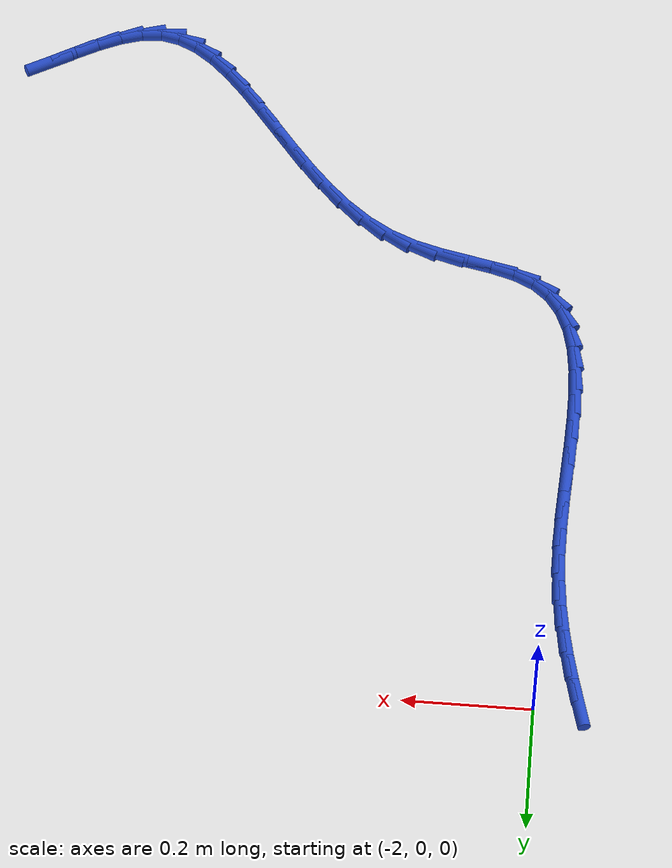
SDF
<sdf version="1.6">
 <world name="default">
  <model name="ground_plane">
   <static>1</static>
   <link name="link">
    <collision name="collision">
     <geometry><plane><normal>0 0 1</normal><size>100 100</size></plane></geometry>
     <surface><friction><ode><mu>100</mu><mu2>50</mu2></ode></friction></surface>
    </collision>
    <visual name="visual">
     <cast_shadows>0</cast_shadows>
     <geometry><plane><normal>0 0 1</normal><size>100 100</size></plane></geometry>
     <material>
      <script><uri>file://media/materials/scripts/gazebo.material</uri><name>Gazebo/WhiteGlow</name></script>
     </material>
    </visual>
   </link>
  </model>
  <model name="line">
   <link name="link_85">
    <pose>-2.067319432149856 -0.009426794801554797 0.01 0 1.57 -1.3057953818355004</pose>
    <collision name="collision">
     <geometry><cylinder><radius>0.01</radius><length>0.08</length></cylinder></geometry>
    </collision>
    <visual name="visual">
     <material>
      <script><name>Gazebo/Blue</name><uri>file://media/materials/scripts/gazebo.material</uri></script>
     </material>
     <geometry><cylinder><radius>0.01</radius><length>0.08</length></cylinder></geometry>
    </visual>
   </link>
   <link name="link_86">
    <pose>-2.0564137687409603 -0.04961221741111521 0.01 0 1.57 -1.3334563957776255</pose>
    <collision name="collision">
     <geometry><cylinder><radius>0.01</radius><length>0.08</length></cylinder></geometry>
    </collision>
    <visual name="visual">
     <material>
      <script><name>Gazebo/Blue</name><uri>file://media/materials/scripts/gazebo.material</uri></script>
     </material>
     <geometry><cylinder><radius>0.01</radius><length>0.08</length></cylinder></geometry>
    </visual>
   </link>
   <link name="link_87">
    <pose>-2.0464648280482263 -0.09074068064695479 0.01 0 1.57 -1.370505600045153</pose>
    <collision name="collision">
     <geometry><cylinder><radius>0.01</radius><length>0.08</length></cylinder></geometry>
    </collision>
    <visual name="visual">
     <material>
      <script><name>Gazebo/Blue</name><uri>file://media/materials/scripts/gazebo.material</uri></script>
     </material>
     <geometry><cylinder><radius>0.01</radius><length>0.08</length></cylinder></geometry>
    </visual>
   </link>
   <link name="link_88">
    <pose>-2.037882484592088 -0.13301558432260915 0.01 0 1.57 -1.4160344242396123</pose>
    <collision name="collision">
     <geometry><cylinder><radius>0.01</radius><length>0.08</length></cylinder></geometry>
    </collision>
    <visual name="visual">
     <material>
      <script><name>Gazebo/Blue</name><uri>file://media/materials/scripts/gazebo.material</uri></script>
     </material>
     <geometry><cylinder><radius>0.01</radius><length>0.08</length></cylinder></geometry>
    </visual>
   </link>
   <link name="link_89">
    <pose>-2.031076612892979 -0.17664032825161485 0.01 0 1.57 -1.4688987743245947</pose>
    <collision name="collision">
     <geometry><cylinder><radius>0.01</radius><length>0.08</length></cylinder></geometry>
    </collision>
    <visual name="visual">
     <material>
      <script><name>Gazebo/Blue</name><uri>file://media/materials/scripts/gazebo.material</uri></script>
     </material>
     <geometry><cylinder><radius>0.01</radius><length>0.08</length></cylinder></geometry>
    </visual>
   </link>
   <link name="link_90">
    <pose>-2.0264570874713326 -0.22181831224750592 0.01 0 1.57 -1.5270467110702979</pose>
    <collision name="collision">
     <geometry><cylinder><radius>0.01</radius><length>0.08</length></cylinder></geometry>
    </collision>
    <visual name="visual">
     <material>
      <script><name>Gazebo/Blue</name><uri>file://media/materials/scripts/gazebo.material</uri></script>
     </material>
     <geometry><cylinder><radius>0.01</radius><length>0.08</length></cylinder></geometry>
    </visual>
   </link>
   <link name="link_91">
    <pose>-2.0244033698392276 -0.26873088826146374 0.01 0 1.57 1.564706032078261</pose>
    <collision name="collision">
     <geometry><cylinder><radius>0.01</radius><length>0.08</length></cylinder></geometry>
    </collision>
    <visual name="visual">
     <material>
      <script><name>Gazebo/Blue</name><uri>file://media/materials/scripts/gazebo.material</uri></script>
     </material>
     <geometry><cylinder><radius>0.01</radius><length>0.08</length></cylinder></geometry>
    </visual>
   </link>
   <link name="link_92">
    <pose>-2.024698118586612 -0.31712675690919945 0.01 0 1.57 1.5326067948721551</pose>
    <collision name="collision">
     <geometry><cylinder><radius>0.01</radius><length>0.08</length></cylinder></geometry>
    </collision>
    <visual name="visual">
     <material>
      <script><name>Gazebo/Blue</name><uri>file://media/materials/scripts/gazebo.material</uri></script>
     </material>
     <geometry><cylinder><radius>0.01</radius><length>0.08</length></cylinder></geometry>
    </visual>
   </link>
   <link name="link_93">
    <pose>-2.0265792155977302 -0.3663596837943531 0.01 0 1.57 1.5165006969916244</pose>
    <collision name="collision">
     <geometry><cylinder><radius>0.01</radius><length>0.08</length></cylinder></geometry>
    </collision>
    <visual name="visual">
     <material>
      <script><name>Gazebo/Blue</name><uri>file://media/materials/scripts/gazebo.material</uri></script>
     </material>
     <geometry><cylinder><radius>0.01</radius><length>0.08</length></cylinder></geometry>
    </visual>
   </link>
   <link name="link_94">
    <pose>-2.0292645621359133 -0.41576894960100336 0.01 0 1.57 1.5155128352202687</pose>
    <collision name="collision">
     <geometry><cylinder><radius>0.01</radius><length>0.08</length></cylinder></geometry>
    </collision>
    <visual name="visual">
     <material>
      <script><name>Gazebo/Blue</name><uri>file://media/materials/scripts/gazebo.material</uri></script>
     </material>
     <geometry><cylinder><radius>0.01</radius><length>0.08</length></cylinder></geometry>
    </visual>
   </link>
   <link name="link_95">
    <pose>-2.0319720594644908 -0.46469383501322586 0.01 0 1.57 1.5300579300199593</pose>
    <collision name="collision">
     <geometry><cylinder><radius>0.01</radius><length>0.08</length></cylinder></geometry>
    </collision>
    <visual name="visual">
     <material>
      <script><name>Gazebo/Blue</name><uri>file://media/materials/scripts/gazebo.material</uri></script>
     </material>
     <geometry><cylinder><radius>0.01</radius><length>0.08</length></cylinder></geometry>
    </visual>
   </link>
   <link name="link_96">
    <pose>-2.0339196088467943 -0.5124736207150993 0.01 0 1.57 1.5619762876831162</pose>
    <collision name="collision">
     <geometry><cylinder><radius>0.01</radius><length>0.08</length></cylinder></geometry>
    </collision>
    <visual name="visual">
     <material>
      <script><name>Gazebo/Blue</name><uri>file://media/materials/scripts/gazebo.material</uri></script>
     </material>
     <geometry><cylinder><radius>0.01</radius><length>0.08</length></cylinder></geometry>
    </visual>
   </link>
   <link name="link_97">
    <pose>-2.034325111546154 -0.558447587390701 0.01 0 1.57 -1.5267256820878632</pose>
    <collision name="collision">
     <geometry><cylinder><radius>0.01</radius><length>0.08</length></cylinder></geometry>
    </collision>
    <visual name="visual">
     <material>
      <script><name>Gazebo/Blue</name><uri>file://media/materials/scripts/gazebo.material</uri></script>
     </material>
     <geometry><cylinder><radius>0.01</radius><length>0.08</length></cylinder></geometry>
    </visual>
   </link>
   <link name="link_98">
    <pose>-2.0324064688259003 -0.6019550157241085 0.01 0 1.57 -1.4469932806529213</pose>
    <collision name="collision">
     <geometry><cylinder><radius>0.01</radius><length>0.08</length></cylinder></geometry>
    </collision>
    <visual name="visual">
     <material>
      <script><name>Gazebo/Blue</name><uri>file://media/materials/scripts/gazebo.material</uri></script>
     </material>
     <geometry><cylinder><radius>0.01</radius><length>0.08</length></cylinder></geometry>
    </visual>
   </link>
   <link name="link_99">
    <pose>-2.0273815819493635 -0.6423351863994003 0.01 0 1.57 -1.3318664210280116</pose>
    <collision name="collision">
     <geometry><cylinder><radius>0.01</radius><length>0.08</length></cylinder></geometry>
    </collision>
    <visual name="visual">
     <material>
      <script><name>Gazebo/Blue</name><uri>file://media/materials/scripts/gazebo.material</uri></script>
     </material>
     <geometry><cylinder><radius>0.01</radius><length>0.08</length></cylinder></geometry>
    </visual>
   </link>
   <link name="link_100">
    <pose>-2.0184683521798745 -0.6789273801006523 0.01 0 1.57 -1.1709647593265975</pose>
    <collision name="collision">
     <geometry><cylinder><radius>0.01</radius><length>0.08</length></cylinder></geometry>
    </collision>
    <visual name="visual">
     <material>
      <script><name>Gazebo/Blue</name><uri>file://media/materials/scripts/gazebo.material</uri></script>
     </material>
     <geometry><cylinder><radius>0.01</radius><length>0.08</length></cylinder></geometry>
    </visual>
   </link>
   <link name="link_101">
    <pose>-2.004884680780764 -0.7110708775119431 0.01 0 1.57 -0.9572865220179037</pose>
    <collision name="collision">
     <geometry><cylinder><radius>0.01</radius><length>0.08</length></cylinder></geometry>
    </collision>
    <visual name="visual">
     <material>
      <script><name>Gazebo/Blue</name><uri>file://media/materials/scripts/gazebo.material</uri></script>
     </material>
     <geometry><cylinder><radius>0.01</radius><length>0.08</length></cylinder></geometry>
    </visual>
   </link>
   <link name="link_102">
    <pose>-1.985848469015362 -0.7381049593173499 0.01 0 1.57 -0.6995044799015107</pose>
    <collision name="collision">
     <geometry><cylinder><radius>0.01</radius><length>0.08</length></cylinder></geometry>
    </collision>
    <visual name="visual">
     <material>
      <script><name>Gazebo/Blue</name><uri>file://media/materials/scripts/gazebo.material</uri></script>
     </material>
     <geometry><cylinder><radius>0.01</radius><length>0.08</length></cylinder></geometry>
    </visual>
   </link>
   <link name="link_103">
    <pose>-1.9605776181469998 -0.7593689062009504 0.01 0 1.57 -0.444336783079617</pose>
    <collision name="collision">
     <geometry><cylinder><radius>0.01</radius><length>0.08</length></cylinder></geometry>
    </collision>
    <visual name="visual">
     <material>
      <script><name>Gazebo/Blue</name><uri>file://media/materials/scripts/gazebo.material</uri></script>
     </material>
     <geometry><cylinder><radius>0.01</radius><length>0.08</length></cylinder></geometry>
    </visual>
   </link>
   <link name="link_104">
    <pose>-1.928617319520116 -0.7745848643978822 0.01 0 1.57 -0.28346201786628045</pose>
    <collision name="collision">
     <geometry><cylinder><radius>0.01</radius><length>0.08</length></cylinder></geometry>
    </collision>
    <visual name="visual">
     <material>
      <script><name>Gazebo/Blue</name><uri>file://media/materials/scripts/gazebo.material</uri></script>
     </material>
     <geometry><cylinder><radius>0.01</radius><length>0.08</length></cylinder></geometry>
    </visual>
   </link>
   <link name="link_105">
    <pose>-1.8912246736497824 -0.7854775799341325 0.01 0 1.57 -0.2147955024580495</pose>
    <collision name="collision">
     <geometry><cylinder><radius>0.01</radius><length>0.08</length></cylinder></geometry>
    </collision>
    <visual name="visual">
     <material>
      <script><name>Gazebo/Blue</name><uri>file://media/materials/scripts/gazebo.material</uri></script>
     </material>
     <geometry><cylinder><radius>0.01</radius><length>0.08</length></cylinder></geometry>
    </visual>
   </link>
   <link name="link_106">
    <pose>-1.8502146283263738 -0.7944243713296157 0.01 0 1.57 -0.21565584307403657</pose>
    <collision name="collision">
     <geometry><cylinder><radius>0.01</radius><length>0.08</length></cylinder></geometry>
    </collision>
    <visual name="visual">
     <material>
      <script><name>Gazebo/Blue</name><uri>file://media/materials/scripts/gazebo.material</uri></script>
     </material>
     <geometry><cylinder><radius>0.01</radius><length>0.08</length></cylinder></geometry>
    </visual>
   </link>
   <link name="link_107">
    <pose>-1.8074024365286159 -0.8038029141150833 0.01 0 1.57 -0.27742802590372956</pose>
    <collision name="collision">
     <geometry><cylinder><radius>0.01</radius><length>0.08</length></cylinder></geometry>
    </collision>
    <visual name="visual">
     <material>
      <script><name>Gazebo/Blue</name><uri>file://media/materials/scripts/gazebo.material</uri></script>
     </material>
     <geometry><cylinder><radius>0.01</radius><length>0.08</length></cylinder></geometry>
    </visual>
   </link>
   <link name="link_108">
    <pose>-1.7646033512352348 -0.815990883821287 0.01 0 1.57 -0.4004201827637779</pose>
    <collision name="collision">
     <geometry><cylinder><radius>0.01</radius><length>0.08</length></cylinder></geometry>
    </collision>
    <visual name="visual">
     <material>
      <script><name>Gazebo/Blue</name><uri>file://media/materials/scripts/gazebo.material</uri></script>
     </material>
     <geometry><cylinder><radius>0.01</radius><length>0.08</length></cylinder></geometry>
    </visual>
   </link>
   <link name="link_109">
    <pose>-1.723616841386686 -0.8333400061501022 0.01 0 1.57 -0.5513991224840536</pose>
    <collision name="collision">
     <geometry><cylinder><radius>0.01</radius><length>0.08</length></cylinder></geometry>
    </collision>
    <visual name="visual">
     <material>
      <script><name>Gazebo/Blue</name><uri>file://media/materials/scripts/gazebo.material</uri></script>
     </material>
     <geometry><cylinder><radius>0.01</radius><length>0.08</length></cylinder></geometry>
    </visual>
   </link>
   <link name="link_110">
    <pose>-1.6854121681978151 -0.856837099544432 0.01 0 1.57 -0.6760727117878177</pose>
    <collision name="collision">
     <geometry><cylinder><radius>0.01</radius><length>0.08</length></cylinder></geometry>
    </collision>
    <visual name="visual">
     <material>
      <script><name>Gazebo/Blue</name><uri>file://media/materials/scripts/gazebo.material</uri></script>
     </material>
     <geometry><cylinder><radius>0.01</radius><length>0.08</length></cylinder></geometry>
    </visual>
   </link>
   <link name="link_111">
    <pose>-1.6497348003173855 -0.8854570000174753 0.01 0 1.57 -0.7710666185072438</pose>
    <collision name="collision">
     <geometry><cylinder><radius>0.01</radius><length>0.08</length></cylinder></geometry>
    </collision>
    <visual name="visual">
     <material>
      <script><name>Gazebo/Blue</name><uri>file://media/materials/scripts/gazebo.material</uri></script>
     </material>
     <geometry><cylinder><radius>0.01</radius><length>0.08</length></cylinder></geometry>
    </visual>
   </link>
   <link name="link_112">
    <pose>-1.6162319708844701 -0.9180130389901185 0.01 0 1.57 -0.839452587500085</pose>
    <collision name="collision">
     <geometry><cylinder><radius>0.01</radius><length>0.08</length></cylinder></geometry>
    </collision>
    <visual name="visual">
     <material>
      <script><name>Gazebo/Blue</name><uri>file://media/materials/scripts/gazebo.material</uri></script>
     </material>
     <geometry><cylinder><radius>0.01</radius><length>0.08</length></cylinder></geometry>
    </visual>
   </link>
   <link name="link_113">
    <pose>-1.5845509130381419 -0.9533185478832481 0.01 0 1.57 -0.8843025018338736</pose>
    <collision name="collision">
     <geometry><cylinder><radius>0.01</radius><length>0.08</length></cylinder></geometry>
    </collision>
    <visual name="visual">
     <material>
      <script><name>Gazebo/Blue</name><uri>file://media/materials/scripts/gazebo.material</uri></script>
     </material>
     <geometry><cylinder><radius>0.01</radius><length>0.08</length></cylinder></geometry>
    </visual>
   </link>
   <link name="link_114">
    <pose>-1.5543388599174772 -0.9901868581177512 0.01 0 1.57 -0.9076167742294248</pose>
    <collision name="collision">
     <geometry><cylinder><radius>0.01</radius><length>0.08</length></cylinder></geometry>
    </collision>
    <visual name="visual">
     <material>
      <script><name>Gazebo/Blue</name><uri>file://media/materials/scripts/gazebo.material</uri></script>
     </material>
     <geometry><cylinder><radius>0.01</radius><length>0.08</length></cylinder></geometry>
    </visual>
   </link>
   <link name="link_115">
    <pose>-1.52524304466155 -1.0274313011145155 0.01 0 1.57 -0.9098410507892222</pose>
    <collision name="collision">
     <geometry><cylinder><radius>0.01</radius><length>0.08</length></cylinder></geometry>
    </collision>
    <visual name="visual">
     <material>
      <script><name>Gazebo/Blue</name><uri>file://media/materials/scripts/gazebo.material</uri></script>
     </material>
     <geometry><cylinder><radius>0.01</radius><length>0.08</length></cylinder></geometry>
    </visual>
   </link>
   <link name="link_116">
    <pose>-1.4969107004094342 -1.0638652082944253 0.01 0 1.57 -0.8894982906705335</pose>
    <collision name="collision">
     <geometry><cylinder><radius>0.01</radius><length>0.08</length></cylinder></geometry>
    </collision>
    <visual name="visual">
     <material>
      <script><name>Gazebo/Blue</name><uri>file://media/materials/scripts/gazebo.material</uri></script>
     </material>
     <geometry><cylinder><radius>0.01</radius><length>0.08</length></cylinder></geometry>
    </visual>
   </link>
   <link name="link_117">
    <pose>-1.468989060300205 -1.0983019110783685 0.01 0 1.57 -0.8426650757242311</pose>
    <collision name="collision">
     <geometry><cylinder><radius>0.01</radius><length>0.08</length></cylinder></geometry>
    </collision>
    <visual name="visual">
     <material>
      <script><name>Gazebo/Blue</name><uri>file://media/materials/scripts/gazebo.material</uri></script>
     </material>
     <geometry><cylinder><radius>0.01</radius><length>0.08</length></cylinder></geometry>
    </visual>
   </link>
   <link name="link_118">
    <pose>-1.4411253574729364 -1.1295547408872322 0.01 0 1.57 -0.7622150878766554</pose>
    <collision name="collision">
     <geometry><cylinder><radius>0.01</radius><length>0.08</length></cylinder></geometry>
    </collision>
    <visual name="visual">
     <material>
      <script><name>Gazebo/Blue</name><uri>file://media/materials/scripts/gazebo.material</uri></script>
     </material>
     <geometry><cylinder><radius>0.01</radius><length>0.08</length></cylinder></geometry>
    </visual>
   </link>
   <link name="link_119">
    <pose>-1.4129668250667027 -1.1564370291419022 0.01 0 1.57 -0.6372619285123201</pose>
    <collision name="collision">
     <geometry><cylinder><radius>0.01</radius><length>0.08</length></cylinder></geometry>
    </collision>
    <visual name="visual">
     <material>
      <script><name>Gazebo/Blue</name><uri>file://media/materials/scripts/gazebo.material</uri></script>
     </material>
     <geometry><cylinder><radius>0.01</radius><length>0.08</length></cylinder></geometry>
    </visual>
   </link>
   <link name="link_120">
    <pose>-1.3841606962205788 -1.1777621072632658 0.01 0 1.57 -0.4549666434940598</pose>
    <collision name="collision">
     <geometry><cylinder><radius>0.01</radius><length>0.08</length></cylinder></geometry>
    </collision>
    <visual name="visual">
     <material>
      <script><name>Gazebo/Blue</name><uri>file://media/materials/scripts/gazebo.material</uri></script>
     </material>
     <geometry><cylinder><radius>0.01</radius><length>0.08</length></cylinder></geometry>
    </visual>
   </link>
   <link name="link_121">
    <pose>-1.3543542040736387 -1.1923433066722102 0.01 0 1.57 -0.2102828378121256</pose>
    <collision name="collision">
     <geometry><cylinder><radius>0.01</radius><length>0.08</length></cylinder></geometry>
    </collision>
    <visual name="visual">
     <material>
      <script><name>Gazebo/Blue</name><uri>file://media/materials/scripts/gazebo.material</uri></script>
     </material>
     <geometry><cylinder><radius>0.01</radius><length>0.08</length></cylinder></geometry>
    </visual>
   </link>
   <link name="link_122">
    <pose>-1.3231945817649569 -1.1989939587896201 0.01 0 1.57 0.0697646836027658</pose>
    <collision name="collision">
     <geometry><cylinder><radius>0.01</radius><length>0.08</length></cylinder></geometry>
    </collision>
    <visual name="visual">
     <material>
      <script><name>Gazebo/Blue</name><uri>file://media/materials/scripts/gazebo.material</uri></script>
     </material>
     <geometry><cylinder><radius>0.01</radius><length>0.08</length></cylinder></geometry>
    </visual>
   </link>
   <link name="link_123">
    <pose>-1.2903569987108967 -1.196699331253382 0.01 0 1.57 0.29144482174452563</pose>
    <collision name="collision">
     <geometry><cylinder><radius>0.01</radius><length>0.08</length></cylinder></geometry>
    </collision>
    <visual name="visual">
     <material>
      <script><name>Gazebo/Blue</name><uri>file://media/materials/scripts/gazebo.material</uri></script>
     </material>
     <geometry><cylinder><radius>0.01</radius><length>0.08</length></cylinder></geometry>
    </visual>
   </link>
   <link name="link_124">
    <pose>-1.2558245842652394 -1.186340057575721 0.01 0 1.57 0.4261688643979653</pose>
    <collision name="collision">
     <geometry><cylinder><radius>0.01</radius><length>0.08</length></cylinder></geometry>
    </collision>
    <visual name="visual">
     <material>
      <script><name>Gazebo/Blue</name><uri>file://media/materials/scripts/gazebo.material</uri></script>
     </material>
     <geometry><cylinder><radius>0.01</radius><length>0.08</length></cylinder></geometry>
    </visual>
   </link>
   <link name="link_125">
    <pose>-1.2197714550371965 -1.1699722187293518 0.01 0 1.57 0.49737565847816767</pose>
    <collision name="collision">
     <geometry><cylinder><radius>0.01</radius><length>0.08</length></cylinder></geometry>
    </collision>
    <visual name="visual">
     <material>
      <script><name>Gazebo/Blue</name><uri>file://media/materials/scripts/gazebo.material</uri></script>
     </material>
     <geometry><cylinder><radius>0.01</radius><length>0.08</length></cylinder></geometry>
    </visual>
   </link>
   <link name="link_126">
    <pose>-1.182374582171236 -1.1496694641692993 0.01 0 1.57 0.521637911388399</pose>
    <collision name="collision">
     <geometry><cylinder><radius>0.01</radius><length>0.08</length></cylinder></geometry>
    </collision>
    <visual name="visual">
     <material>
      <script><name>Gazebo/Blue</name><uri>file://media/materials/scripts/gazebo.material</uri></script>
     </material>
     <geometry><cylinder><radius>0.01</radius><length>0.08</length></cylinder></geometry>
    </visual>
   </link>
   <link name="link_127">
    <pose>-1.1438109368118272 -1.1275054433505916 0.01 0 1.57 0.5066637225993187</pose>
    <collision name="collision">
     <geometry><cylinder><radius>0.01</radius><length>0.08</length></cylinder></geometry>
    </collision>
    <visual name="visual">
     <material>
      <script><name>Gazebo/Blue</name><uri>file://media/materials/scripts/gazebo.material</uri></script>
     </material>
     <geometry><cylinder><radius>0.01</radius><length>0.08</length></cylinder></geometry>
    </visual>
   </link>
  </model>
 </world>
</sdf>
